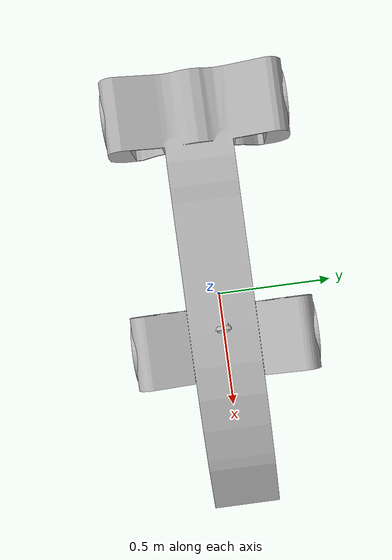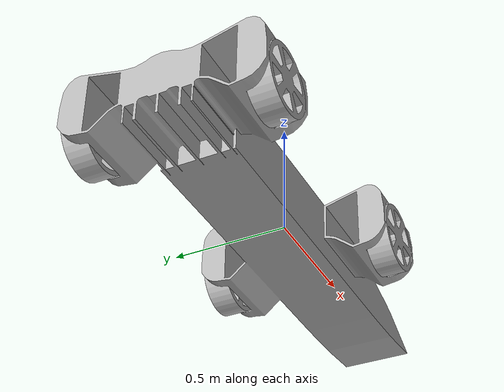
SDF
<sdf version='1.7'>
  <model name='my_robot'>
    <link name='base_link'>
      <inertial>
        <pose>-0.106265 0.0021 -0.014236 0 -0 0</pose>
        <mass>144.436</mass>
        <inertia>
          <ixx>2.66112</ixx>
          <ixy>4.34784e-05</ixy>
          <ixz>1.41234</ixz>
          <iyy>37.2151</iyy>
          <iyz>1.50741e-05</iyz>
          <izz>38.2736</izz>
        </inertia>
      </inertial>
      <collision name='base_link_collision'>
        <pose>0 0 0 0 -0 0</pose>
        <geometry>
          <mesh>
            <scale>1 1 1</scale>
            <uri>model://my_robot/meshes/base_link.STL</uri>
          </mesh>
        </geometry>
      </collision>
      <visual name='base_link_visual'>
        <pose>0 0 0 0 -0 0</pose>
        <geometry>
          <mesh>
            <scale>1 1 1</scale>
            <uri>model://my_robot/meshes/base_link.STL</uri>
          </mesh>
        </geometry>
      </visual>
    </link>
    <joint name='back_left_wheel_joint' type='revolute'>
      <pose relative_to='base_link'>-0.82 0.34 -0.031041 0 -0 0</pose>
      <parent>base_link</parent>
      <child>back_left_wheel</child>
      <axis>
        <xyz>0 1 0</xyz>
        <limit>
          <lower>-1e+16</lower>
          <upper>1e+16</upper>
        </limit>
        <dynamics>
          <spring_reference>0</spring_reference>
          <spring_stiffness>0</spring_stiffness>
        </dynamics>
      </axis>
    </joint>
    <link name='back_left_wheel'>
      <pose relative_to='back_left_wheel_joint'>0 0 0 0 -0 0</pose>
      <inertial>
        <pose>-0 0.020554 -0 0 -0 0</pose>
        <mass>10.426</mass>
        <inertia>
          <ixx>0.064119</ixx>
          <ixy>3.8659e-18</ixy>
          <ixz>-7.1542e-17</ixz>
          <iyy>0.11102</iyy>
          <iyz>-5.3112e-16</iyz>
          <izz>0.064119</izz>
        </inertia>
      </inertial>
      <collision name='back_left_wheel_collision'>
        <pose>0 0 0 0 -0 0</pose>
        <geometry>
          <mesh>
            <scale>1 1 1</scale>
            <uri>model://my_robot/meshes/back_left_wheel.STL</uri>
          </mesh>
        </geometry>
      </collision>
      <visual name='back_left_wheel_visual'>
        <pose>0 0 0 0 -0 0</pose>
        <geometry>
          <mesh>
            <scale>1 1 1</scale>
            <uri>model://my_robot/meshes/back_left_wheel.STL</uri>
          </mesh>
        </geometry>
      </visual>
    </link>
    <joint name='back_right_wheel_joint' type='revolute'>
      <pose relative_to='base_link'>-0.82 -0.3358 -0.031041 0 -0 0</pose>
      <parent>base_link</parent>
      <child>back_right_wheel</child>
      <axis>
        <xyz>0 1 0</xyz>
        <limit>
          <lower>-1e+16</lower>
          <upper>1e+16</upper>
        </limit>
        <dynamics>
          <spring_reference>0</spring_reference>
          <spring_stiffness>0</spring_stiffness>
        </dynamics>
      </axis>
    </joint>
    <link name='back_right_wheel'>
      <pose relative_to='back_right_wheel_joint'>0 0 0 0 -0 0</pose>
      <inertial>
        <pose>-0 -0.020554 -0 0 -0 0</pose>
        <mass>10.426</mass>
        <inertia>
          <ixx>0.064119</ixx>
          <ixy>9.9658e-18</ixy>
          <ixz>-7.0799e-17</ixz>
          <iyy>0.11102</iyy>
          <iyz>1.7217e-18</iyz>
          <izz>0.064119</izz>
        </inertia>
      </inertial>
      <collision name='back_right_wheel_collision'>
        <pose>0 0 0 0 -0 0</pose>
        <geometry>
          <mesh>
            <scale>1 1 1</scale>
            <uri>model://my_robot/meshes/back_right_wheel.STL</uri>
          </mesh>
        </geometry>
      </collision>
      <visual name='back_right_wheel_visual'>
        <pose>0 0 0 0 -0 0</pose>
        <geometry>
          <mesh>
            <scale>1 1 1</scale>
            <uri>model://my_robot/meshes/back_right_wheel.STL</uri>
          </mesh>
        </geometry>
      </visual>
    </link>
    <joint name='front_left_wheel_joint' type='revolute'>
      <pose relative_to='base_link'>0.2176 0.34 -0.031041 0 -0 0</pose>
      <parent>base_link</parent>
      <child>front_left_wheel</child>
      <axis>
        <xyz>0 1 0</xyz>
        <limit>
          <lower>-1e+16</lower>
          <upper>1e+16</upper>
        </limit>
        <dynamics>
          <spring_reference>0</spring_reference>
          <spring_stiffness>0</spring_stiffness>
        </dynamics>
      </axis>
    </joint>
    <link name='front_left_wheel'>
      <pose relative_to='front_left_wheel_joint'>0 0 0 0 -0 0</pose>
      <inertial>
        <pose>-0 0.020554 -0 0 -0 0</pose>
        <mass>10.426</mass>
        <inertia>
          <ixx>0.064119</ixx>
          <ixy>-3.7701e-19</ixy>
          <ixz>2.0432e-17</ixz>
          <iyy>0.11102</iyy>
          <iyz>-5.225e-16</iyz>
          <izz>0.064119</izz>
        </inertia>
      </inertial>
      <collision name='front_left_wheel_collision'>
        <pose>0 0 0 0 -0 0</pose>
        <geometry>
          <mesh>
            <scale>1 1 1</scale>
            <uri>model://my_robot/meshes/front_left_wheel.STL</uri>
          </mesh>
        </geometry>
      </collision>
      <visual name='front_left_wheel_visual'>
        <pose>0 0 0 0 -0 0</pose>
        <geometry>
          <mesh>
            <scale>1 1 1</scale>
            <uri>model://my_robot/meshes/front_left_wheel.STL</uri>
          </mesh>
        </geometry>
      </visual>
    </link>
    <joint name='front_right_wheel_joint' type='revolute'>
      <pose relative_to='base_link'>0.2176 -0.3358 -0.031041 0 -0 0</pose>
      <parent>base_link</parent>
      <child>front_right_wheel</child>
      <axis>
        <xyz>0 1 0</xyz>
        <limit>
          <lower>-1e+16</lower>
          <upper>1e+16</upper>
        </limit>
        <dynamics>
          <spring_reference>0</spring_reference>
          <spring_stiffness>0</spring_stiffness>
        </dynamics>
      </axis>
    </joint>
    <link name='front_right_wheel'>
      <pose relative_to='front_right_wheel_joint'>0 0 0 0 -0 0</pose>
      <inertial>
        <pose>-0 -0.020554 -0 0 -0 0</pose>
        <mass>10.426</mass>
        <inertia>
          <ixx>0.064119</ixx>
          <ixy>8.339e-18</ixy>
          <ixz>-6.9613e-17</ixz>
          <iyy>0.11102</iyy>
          <iyz>-5.6072e-19</iyz>
          <izz>0.064119</izz>
        </inertia>
      </inertial>
      <collision name='front_right_wheel_collision'>
        <pose>0 0 0 0 -0 0</pose>
        <geometry>
          <mesh>
            <scale>1 1 1</scale>
            <uri>model://my_robot/meshes/front_right_wheel.STL</uri>
          </mesh>
        </geometry>
      </collision>
      <visual name='front_right_wheel_visual'>
        <pose>0 0 0 0 -0 0</pose>
        <geometry>
          <mesh>
            <scale>1 1 1</scale>
            <uri>model://my_robot/meshes/front_right_wheel.STL</uri>
          </mesh>
        </geometry>
      </visual>
    </link>
    <joint name='lidar_link_joint' type='fixed'>
      <pose relative_to='base_link'>0.15965 0.0021 0.1103 0 -0 0</pose>
      <parent>base_link</parent>
      <child>lidar_link</child>
      <axis>
        <dynamics>
          <spring_reference>0</spring_reference>
          <spring_stiffness>0</spring_stiffness>
        </dynamics>
        <xyz>0 0 1</xyz>
        <limit>
          <lower>-1e+16</lower>
          <upper>1e+16</upper>
        </limit>
      </axis>
      <physics>
        <ode>
          <limit>
            <cfm>0</cfm>
            <erp>0.2</erp>
          </limit>
        </ode>
      </physics>
    </joint>
    <link name='lidar_link'>
      <pose relative_to='lidar_link_joint'>0 0 0 0 -0 0</pose>
      <inertial>
        <pose>-0.000277 -0 0.005 0 -0 0</pose>
        <mass>0.016141</mass>
        <inertia>
          <ixx>4.2235e-06</ixx>
          <ixy>-1.9485e-22</ixy>
          <ixz>3.4687e-23</ixz>
          <iyy>7.0432e-07</iyy>
          <iyz>2.1281e-23</iyz>
          <izz>4.6511e-06</izz>
        </inertia>
      </inertial>
      <collision name='lidar_link_collision'>
        <pose>0 0 0 0 -0 0</pose>
        <geometry>
          <mesh>
            <scale>1 1 1</scale>
            <uri>model://my_robot/meshes/lidar_link.STL</uri>
          </mesh>
        </geometry>
        <surface>
          <contact>
            <ode/>
          </contact>
          <friction>
            <ode/>
          </friction>
        </surface>
      </collision>
      <visual name='lidar_link_visual'>
        <pose>0 0 0 0 -0 0</pose>
        <geometry>
          <mesh>
            <scale>1 1 1</scale>
            <uri>model://my_robot/meshes/lidar_link.STL</uri>
          </mesh>
        </geometry>
      </visual>
      <gravity>1</gravity>
      <velocity_decay/>
      <sensor name='ray_sensor' type='ray'>
        <visualize>1</visualize>
        <ray>
          <scan>
            <horizontal>
              <samples>40</samples>
              <resolution>1</resolution>
              <min_angle>-0.698132</min_angle>
              <max_angle>0.698132</max_angle>
            </horizontal>
          </scan>
          <range>
            <min>0.81</min>
            <max>50</max>
          </range>
        </ray>
        <plugin name='lidar_controller' filename='libgazebo_ros_laser.so'>
          <alwaysOn>1</alwaysOn>
          <updateRate>30</updateRate>
          <topicName>base_scan</topicName>
          <frameName>lidar_link</frameName>
        </plugin>
        <always_on>1</always_on>
        <update_rate>1</update_rate>
        <parent link='lidar_link'/>
      </sensor>
    </link>
    <joint name='camera_link_joint' type='fixed'>
      <pose relative_to='lidar_link'>0 0 0.01 0 -0 0</pose>
      <parent>lidar_link</parent>
      <child>camera_link</child>
      <axis>
        <dynamics>
          <spring_reference>0</spring_reference>
          <spring_stiffness>0</spring_stiffness>
        </dynamics>
        <xyz>0 0 1</xyz>
        <limit>
          <lower>-1e+16</lower>
          <upper>1e+16</upper>
        </limit>
      </axis>
      <physics>
        <ode>
          <limit>
            <cfm>0</cfm>
            <erp>0.2</erp>
          </limit>
        </ode>
      </physics>
    </joint>
    <link name='camera_link'>
      <pose relative_to='camera_link_joint'>0 0 0 0 -0 0</pose>
      <inertial>
        <pose>-0.000277 -0 0.005 0 -0 0</pose>
        <mass>0.016141</mass>
        <inertia>
          <ixx>4.2235e-06</ixx>
          <ixy>-1.9711e-22</ixy>
          <ixz>-3.677e-23</ixz>
          <iyy>7.0432e-07</iyy>
          <iyz>-1.4426e-22</iyz>
          <izz>4.6511e-06</izz>
        </inertia>
      </inertial>
      <collision name='camera_link_collision'>
        <pose>0 0 0 0 -0 0</pose>
        <geometry>
          <mesh>
            <scale>1 1 1</scale>
            <uri>model://my_robot/meshes/camera_link.STL</uri>
          </mesh>
        </geometry>
        <surface>
          <contact>
            <ode/>
          </contact>
          <friction>
            <ode/>
          </friction>
        </surface>
      </collision>
      <visual name='camera_link_visual'>
        <pose>0 0 0 0 -0 0</pose>
        <geometry>
          <mesh>
            <scale>1 1 1</scale>
            <uri>model://my_robot/meshes/camera_link.STL</uri>
          </mesh>
        </geometry>
      </visual>
      <gravity>1</gravity>
      <velocity_decay/>
      <sensor name='camera_sensor' type='camera'>
        <update_rate>30</update_rate>
        <visualize>1</visualize>
        <camera>
          <horizontal_fov>1.39626</horizontal_fov>
          <image>
            <format>R8G8B8</format>
            <width>640</width>
            <height>480</height>
          </image>
          <clip>
            <near>0.81</near>
            <far>50</far>
          </clip>
        </camera>
        <plugin name='camera_controller' filename='libgazebo_ros_camera.so'>
          <cameraName>front_camera</cameraName>
          <alwaysOn>1</alwaysOn>
          <updateRate>0.0</updateRate>
          <imageTopicName>image_raw</imageTopicName>
          <cameraInfoTopicName>camera_info</cameraInfoTopicName>
          <frameName>camera_link</frameName>
        </plugin>
        <parent link='camera_link'/>
      </sensor>
    </link>
    <static>0</static>
    <plugin name='skid_drive_controller' filename='libgazebo_ros_skid_steer_drive.so'>
      <updateRate>100.0</updateRate>
      <robotNamespace>/my_robot</robotNamespace>
      <commandTopic>cmd_vel</commandTopic>
      <torque>50</torque>
      <leftFrontJoint>front_left_wheel_joint</leftFrontJoint>
      <rightFrontJoint>front_right_wheel_joint</rightFrontJoint>
      <leftRearJoint>back_left_wheel_joint</leftRearJoint>
      <rightRearJoint>back_right_wheel_joint</rightRearJoint>
      <wheelSeparation>0.72</wheelSeparation>
      <wheelDiameter>0.28</wheelDiameter>
      <wheelAcceleration>1.0</wheelAcceleration>
      <odometryTopic>odom</odometryTopic>
      <odometryFrame>odom</odometryFrame>
      <robotBaseFrame>base_link</robotBaseFrame>
      <broadcastTF>0</broadcastTF>
    </plugin>
  </model>
</sdf>
